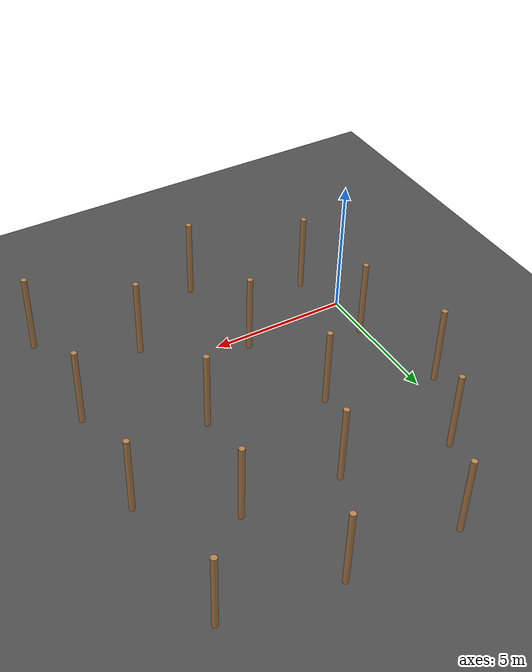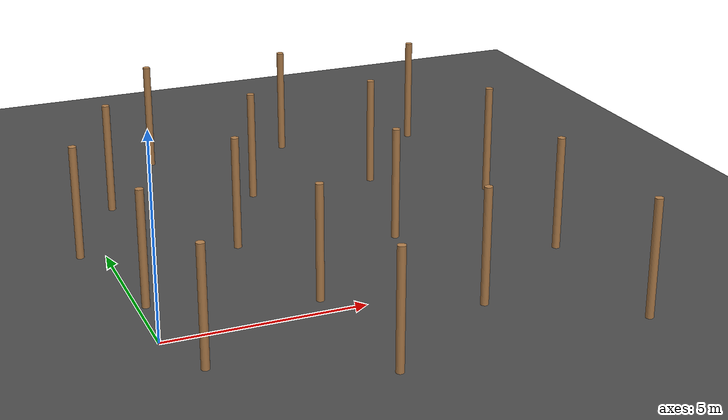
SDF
<sdf version="1.6">
 <world name="default">
  <include><uri>model://ground_plane</uri></include>
  <model name="asphalt_plane">
   <static>1</static>
   <link name="link">
    <collision name="collision"><geometry><box><size>42.4866 44.6464 0.1</size></box></geometry></collision>
    <visual name="visual">
     <cast_shadows>0</cast_shadows>
     <geometry><box><size>42.4866 44.6464 0.1</size></box></geometry>
     <material>
      <script>
       <uri>model://asphalt_plane/materials/scripts</uri>
       <uri>model://asphalt_plane/materials/textures</uri>
       <name>vrc/asphalt</name>
      </script>
     </material>
    </visual>
   </link>
  </model>
  <model name="wooden_cylinder1_clone_23">
   <pose>4.35296 -3.31184 -0.000177 0 -0 0</pose>
   <link name="wooden_cylinder::link_0">
    <pose>0 0 1.5 0 -0 0</pose>
    <inertial>
     <mass>1</mass>
     <inertia><ixx>0.145833</ixx><ixy>0</ixy><ixz>0</ixz><iyy>0.145833</iyy><iyz>0</iyz><izz>0.125</izz></inertia>
    </inertial>
    <visual name="visual">
     <geometry><cylinder><radius>0.1</radius><length>3</length></cylinder></geometry>
     <material>
      <lighting>1</lighting>
      <script><uri>file://media/materials/scripts/gazebo.material</uri><name>Gazebo/Wood</name></script>
      <ambient>0.3 0.3 0.3 1</ambient>
      <diffuse>0.7 0.7 0.7 1</diffuse>
      <specular>0.01 0.01 0.01 1</specular>
      <emissive>0 0 0 1</emissive>
      <shader type="vertex"><normal_map>__default__</normal_map></shader>
     </material>
    </visual>
    <collision name="collision">
     <geometry><cylinder><radius>0.1</radius><length>3</length></cylinder></geometry>
     <surface>
      <friction>
       <ode><mu>1</mu><mu2>1</mu2><fdir1>0 0 0</fdir1><slip1>0</slip1><slip2>0</slip2></ode>
       <torsional>
        <coefficient>1</coefficient>
        <patch_radius>0</patch_radius>
        <surface_radius>0</surface_radius>
        <use_patch_radius>1</use_patch_radius>
        <ode><slip>0</slip></ode>
       </torsional>
      </friction>
      <bounce><restitution_coefficient>0</restitution_coefficient><threshold>1e+06</threshold></bounce>
      <contact>
       <collide_without_contact>0</collide_without_contact>
       <collide_without_contact_bitmask>1</collide_without_contact_bitmask>
       <collide_bitmask>1</collide_bitmask>
       <ode>
        <soft_cfm>0</soft_cfm>
        <soft_erp>0.2</soft_erp>
        <kp>1e+13</kp>
        <kd>1</kd>
        <max_vel>0.01</max_vel>
        <min_depth>0</min_depth>
       </ode>
       <bullet>
        <split_impulse>1</split_impulse>
        <split_impulse_penetration_threshold>-0.01</split_impulse_penetration_threshold>
        <soft_cfm>0</soft_cfm>
        <soft_erp>0.2</soft_erp>
        <kp>1e+13</kp>
        <kd>1</kd>
       </bullet>
      </contact>
     </surface>
    </collision>
   </link>
   <static>1</static>
  </model>
  <model name="wooden_cylinder1_clone_24">
   <pose>0.582381 -1.60032 7e-05 0 -0 0</pose>
   <link name="wooden_cylinder::link_0">
    <pose>0 0 1.5 0 -0 0</pose>
    <inertial>
     <mass>1</mass>
     <inertia><ixx>0.145833</ixx><ixy>0</ixy><ixz>0</ixz><iyy>0.145833</iyy><iyz>0</iyz><izz>0.125</izz></inertia>
    </inertial>
    <visual name="visual">
     <geometry><cylinder><radius>0.1</radius><length>3</length></cylinder></geometry>
     <material>
      <lighting>1</lighting>
      <script><uri>file://media/materials/scripts/gazebo.material</uri><name>Gazebo/Wood</name></script>
      <ambient>0.3 0.3 0.3 1</ambient>
      <diffuse>0.7 0.7 0.7 1</diffuse>
      <specular>0.01 0.01 0.01 1</specular>
      <emissive>0 0 0 1</emissive>
      <shader type="vertex"><normal_map>__default__</normal_map></shader>
     </material>
    </visual>
    <collision name="collision">
     <geometry><cylinder><radius>0.1</radius><length>3</length></cylinder></geometry>
     <surface>
      <friction>
       <ode><mu>1</mu><mu2>1</mu2><fdir1>0 0 0</fdir1><slip1>0</slip1><slip2>0</slip2></ode>
       <torsional>
        <coefficient>1</coefficient>
        <patch_radius>0</patch_radius>
        <surface_radius>0</surface_radius>
        <use_patch_radius>1</use_patch_radius>
        <ode><slip>0</slip></ode>
       </torsional>
      </friction>
      <bounce><restitution_coefficient>0</restitution_coefficient><threshold>1e+06</threshold></bounce>
      <contact>
       <collide_without_contact>0</collide_without_contact>
       <collide_without_contact_bitmask>1</collide_without_contact_bitmask>
       <collide_bitmask>1</collide_bitmask>
       <ode>
        <soft_cfm>0</soft_cfm>
        <soft_erp>0.2</soft_erp>
        <kp>1e+13</kp>
        <kd>1</kd>
        <max_vel>0.01</max_vel>
        <min_depth>0</min_depth>
       </ode>
       <bullet>
        <split_impulse>1</split_impulse>
        <split_impulse_penetration_threshold>-0.01</split_impulse_penetration_threshold>
        <soft_cfm>0</soft_cfm>
        <soft_erp>0.2</soft_erp>
        <kp>1e+13</kp>
        <kd>1</kd>
       </bullet>
      </contact>
     </surface>
    </collision>
   </link>
   <static>1</static>
  </model>
  <model name="wooden_cylinder1_clone_26">
   <pose>0.175606 1.77763 6.1e-05 0 -0 0</pose>
   <link name="wooden_cylinder::link_0">
    <pose>0 0 1.5 0 -0 0</pose>
    <inertial>
     <mass>1</mass>
     <inertia><ixx>0.145833</ixx><ixy>0</ixy><ixz>0</ixz><iyy>0.145833</iyy><iyz>0</iyz><izz>0.125</izz></inertia>
    </inertial>
    <visual name="visual">
     <geometry><cylinder><radius>0.1</radius><length>3</length></cylinder></geometry>
     <material>
      <lighting>1</lighting>
      <script><uri>file://media/materials/scripts/gazebo.material</uri><name>Gazebo/Wood</name></script>
      <ambient>0.3 0.3 0.3 1</ambient>
      <diffuse>0.7 0.7 0.7 1</diffuse>
      <specular>0.01 0.01 0.01 1</specular>
      <emissive>0 0 0 1</emissive>
      <shader type="vertex"><normal_map>__default__</normal_map></shader>
     </material>
    </visual>
    <collision name="collision">
     <geometry><cylinder><radius>0.1</radius><length>3</length></cylinder></geometry>
     <surface>
      <friction>
       <ode><mu>1</mu><mu2>1</mu2><fdir1>0 0 0</fdir1><slip1>0</slip1><slip2>0</slip2></ode>
       <torsional>
        <coefficient>1</coefficient>
        <patch_radius>0</patch_radius>
        <surface_radius>0</surface_radius>
        <use_patch_radius>1</use_patch_radius>
        <ode><slip>0</slip></ode>
       </torsional>
      </friction>
      <bounce><restitution_coefficient>0</restitution_coefficient><threshold>1e+06</threshold></bounce>
      <contact>
       <collide_without_contact>0</collide_without_contact>
       <collide_without_contact_bitmask>1</collide_without_contact_bitmask>
       <collide_bitmask>1</collide_bitmask>
       <ode>
        <soft_cfm>0</soft_cfm>
        <soft_erp>0.2</soft_erp>
        <kp>1e+13</kp>
        <kd>1</kd>
        <max_vel>0.01</max_vel>
        <min_depth>0</min_depth>
       </ode>
       <bullet>
        <split_impulse>1</split_impulse>
        <split_impulse_penetration_threshold>-0.01</split_impulse_penetration_threshold>
        <soft_cfm>0</soft_cfm>
        <soft_erp>0.2</soft_erp>
        <kp>1e+13</kp>
        <kd>1</kd>
       </bullet>
      </contact>
     </surface>
    </collision>
   </link>
   <static>1</static>
  </model>
  <model name="wooden_cylinder1_clone_30">
   <pose>4.04798 0.554378 8.8e-05 0 -0 0</pose>
   <link name="wooden_cylinder::link_0">
    <pose>0 0 1.5 0 -0 0</pose>
    <inertial>
     <mass>1</mass>
     <inertia><ixx>0.145833</ixx><ixy>0</ixy><ixz>0</ixz><iyy>0.145833</iyy><iyz>0</iyz><izz>0.125</izz></inertia>
    </inertial>
    <visual name="visual">
     <geometry><cylinder><radius>0.1</radius><length>3</length></cylinder></geometry>
     <material>
      <lighting>1</lighting>
      <script><uri>file://media/materials/scripts/gazebo.material</uri><name>Gazebo/Wood</name></script>
      <ambient>0.3 0.3 0.3 1</ambient>
      <diffuse>0.7 0.7 0.7 1</diffuse>
      <specular>0.01 0.01 0.01 1</specular>
      <emissive>0 0 0 1</emissive>
      <shader type="vertex"><normal_map>__default__</normal_map></shader>
     </material>
    </visual>
    <collision name="collision">
     <geometry><cylinder><radius>0.1</radius><length>3</length></cylinder></geometry>
     <surface>
      <friction>
       <ode><mu>1</mu><mu2>1</mu2><fdir1>0 0 0</fdir1><slip1>0</slip1><slip2>0</slip2></ode>
       <torsional>
        <coefficient>1</coefficient>
        <patch_radius>0</patch_radius>
        <surface_radius>0</surface_radius>
        <use_patch_radius>1</use_patch_radius>
        <ode><slip>0</slip></ode>
       </torsional>
      </friction>
      <bounce><restitution_coefficient>0</restitution_coefficient><threshold>1e+06</threshold></bounce>
      <contact>
       <collide_without_contact>0</collide_without_contact>
       <collide_without_contact_bitmask>1</collide_without_contact_bitmask>
       <collide_bitmask>1</collide_bitmask>
       <ode>
        <soft_cfm>0</soft_cfm>
        <soft_erp>0.2</soft_erp>
        <kp>1e+13</kp>
        <kd>1</kd>
        <max_vel>0.01</max_vel>
        <min_depth>0</min_depth>
       </ode>
       <bullet>
        <split_impulse>1</split_impulse>
        <split_impulse_penetration_threshold>-0.01</split_impulse_penetration_threshold>
        <soft_cfm>0</soft_cfm>
        <soft_erp>0.2</soft_erp>
        <kp>1e+13</kp>
        <kd>1</kd>
       </bullet>
      </contact>
     </surface>
    </collision>
   </link>
   <static>1</static>
  </model>
  <model name="wooden_cylinder1_clone_32">
   <pose>7.50706 -1.09907 2.9e-05 0 -0 0</pose>
   <link name="wooden_cylinder::link_0">
    <pose>0 0 1.5 0 -0 0</pose>
    <inertial>
     <mass>1</mass>
     <inertia><ixx>0.145833</ixx><ixy>0</ixy><ixz>0</ixz><iyy>0.145833</iyy><iyz>0</iyz><izz>0.125</izz></inertia>
    </inertial>
    <visual name="visual">
     <geometry><cylinder><radius>0.1</radius><length>3</length></cylinder></geometry>
     <material>
      <lighting>1</lighting>
      <script><uri>file://media/materials/scripts/gazebo.material</uri><name>Gazebo/Wood</name></script>
      <ambient>0.3 0.3 0.3 1</ambient>
      <diffuse>0.7 0.7 0.7 1</diffuse>
      <specular>0.01 0.01 0.01 1</specular>
      <emissive>0 0 0 1</emissive>
      <shader type="vertex"><normal_map>__default__</normal_map></shader>
     </material>
    </visual>
    <collision name="collision">
     <geometry><cylinder><radius>0.1</radius><length>3</length></cylinder></geometry>
     <surface>
      <friction>
       <ode><mu>1</mu><mu2>1</mu2><fdir1>0 0 0</fdir1><slip1>0</slip1><slip2>0</slip2></ode>
       <torsional>
        <coefficient>1</coefficient>
        <patch_radius>0</patch_radius>
        <surface_radius>0</surface_radius>
        <use_patch_radius>1</use_patch_radius>
        <ode><slip>0</slip></ode>
       </torsional>
      </friction>
      <bounce><restitution_coefficient>0</restitution_coefficient><threshold>1e+06</threshold></bounce>
      <contact>
       <collide_without_contact>0</collide_without_contact>
       <collide_without_contact_bitmask>1</collide_without_contact_bitmask>
       <collide_bitmask>1</collide_bitmask>
       <ode>
        <soft_cfm>0</soft_cfm>
        <soft_erp>0.2</soft_erp>
        <kp>1e+13</kp>
        <kd>1</kd>
        <max_vel>0.01</max_vel>
        <min_depth>0</min_depth>
       </ode>
       <bullet>
        <split_impulse>1</split_impulse>
        <split_impulse_penetration_threshold>-0.01</split_impulse_penetration_threshold>
        <soft_cfm>0</soft_cfm>
        <soft_erp>0.2</soft_erp>
        <kp>1e+13</kp>
        <kd>1</kd>
       </bullet>
      </contact>
     </surface>
    </collision>
   </link>
   <static>1</static>
  </model>
  <model name="wooden_cylinder1_clone_34">
   <pose>-0.627193 5.1014 0.000134 0 -0 0</pose>
   <link name="wooden_cylinder::link_0">
    <pose>0 0 1.5 0 -0 0</pose>
    <inertial>
     <mass>1</mass>
     <inertia><ixx>0.145833</ixx><ixy>0</ixy><ixz>0</ixz><iyy>0.145833</iyy><iyz>0</iyz><izz>0.125</izz></inertia>
    </inertial>
    <visual name="visual">
     <geometry><cylinder><radius>0.1</radius><length>3</length></cylinder></geometry>
     <material>
      <lighting>1</lighting>
      <script><uri>file://media/materials/scripts/gazebo.material</uri><name>Gazebo/Wood</name></script>
      <ambient>0.3 0.3 0.3 1</ambient>
      <diffuse>0.7 0.7 0.7 1</diffuse>
      <specular>0.01 0.01 0.01 1</specular>
      <emissive>0 0 0 1</emissive>
      <shader type="vertex"><normal_map>__default__</normal_map></shader>
     </material>
    </visual>
    <collision name="collision">
     <geometry><cylinder><radius>0.1</radius><length>3</length></cylinder></geometry>
     <surface>
      <friction>
       <ode><mu>1</mu><mu2>1</mu2><fdir1>0 0 0</fdir1><slip1>0</slip1><slip2>0</slip2></ode>
       <torsional>
        <coefficient>1</coefficient>
        <patch_radius>0</patch_radius>
        <surface_radius>0</surface_radius>
        <use_patch_radius>1</use_patch_radius>
        <ode><slip>0</slip></ode>
       </torsional>
      </friction>
      <bounce><restitution_coefficient>0</restitution_coefficient><threshold>1e+06</threshold></bounce>
      <contact>
       <collide_without_contact>0</collide_without_contact>
       <collide_without_contact_bitmask>1</collide_without_contact_bitmask>
       <collide_bitmask>1</collide_bitmask>
       <ode>
        <soft_cfm>0</soft_cfm>
        <soft_erp>0.2</soft_erp>
        <kp>1e+13</kp>
        <kd>1</kd>
        <max_vel>0.01</max_vel>
        <min_depth>0</min_depth>
       </ode>
       <bullet>
        <split_impulse>1</split_impulse>
        <split_impulse_penetration_threshold>-0.01</split_impulse_penetration_threshold>
        <soft_cfm>0</soft_cfm>
        <soft_erp>0.2</soft_erp>
        <kp>1e+13</kp>
        <kd>1</kd>
       </bullet>
      </contact>
     </surface>
    </collision>
   </link>
   <static>1</static>
  </model>
  <model name="wooden_cylinder1_clone_35">
   <pose>3.22241 4.21506 2.2e-05 0 -0 0</pose>
   <link name="wooden_cylinder::link_0">
    <pose>0 0 1.5 0 -0 0</pose>
    <inertial>
     <mass>1</mass>
     <inertia><ixx>0.145833</ixx><ixy>0</ixy><ixz>0</ixz><iyy>0.145833</iyy><iyz>0</iyz><izz>0.125</izz></inertia>
    </inertial>
    <visual name="visual">
     <geometry><cylinder><radius>0.1</radius><length>3</length></cylinder></geometry>
     <material>
      <lighting>1</lighting>
      <script><uri>file://media/materials/scripts/gazebo.material</uri><name>Gazebo/Wood</name></script>
      <ambient>0.3 0.3 0.3 1</ambient>
      <diffuse>0.7 0.7 0.7 1</diffuse>
      <specular>0.01 0.01 0.01 1</specular>
      <emissive>0 0 0 1</emissive>
      <shader type="vertex"><normal_map>__default__</normal_map></shader>
     </material>
    </visual>
    <collision name="collision">
     <geometry><cylinder><radius>0.1</radius><length>3</length></cylinder></geometry>
     <surface>
      <friction>
       <ode><mu>1</mu><mu2>1</mu2><fdir1>0 0 0</fdir1><slip1>0</slip1><slip2>0</slip2></ode>
       <torsional>
        <coefficient>1</coefficient>
        <patch_radius>0</patch_radius>
        <surface_radius>0</surface_radius>
        <use_patch_radius>1</use_patch_radius>
        <ode><slip>0</slip></ode>
       </torsional>
      </friction>
      <bounce><restitution_coefficient>0</restitution_coefficient><threshold>1e+06</threshold></bounce>
      <contact>
       <collide_without_contact>0</collide_without_contact>
       <collide_without_contact_bitmask>1</collide_without_contact_bitmask>
       <collide_bitmask>1</collide_bitmask>
       <ode>
        <soft_cfm>0</soft_cfm>
        <soft_erp>0.2</soft_erp>
        <kp>1e+13</kp>
        <kd>1</kd>
        <max_vel>0.01</max_vel>
        <min_depth>0</min_depth>
       </ode>
       <bullet>
        <split_impulse>1</split_impulse>
        <split_impulse_penetration_threshold>-0.01</split_impulse_penetration_threshold>
        <soft_cfm>0</soft_cfm>
        <soft_erp>0.2</soft_erp>
        <kp>1e+13</kp>
        <kd>1</kd>
       </bullet>
      </contact>
     </surface>
    </collision>
   </link>
   <static>1</static>
  </model>
  <model name="wooden_cylinder1_clone_37">
   <pose>7.18539 3.28749 1.1e-05 0 -0 0</pose>
   <link name="wooden_cylinder::link_0">
    <pose>0 0 1.5 0 -0 0</pose>
    <inertial>
     <mass>1</mass>
     <inertia><ixx>0.145833</ixx><ixy>0</ixy><ixz>0</ixz><iyy>0.145833</iyy><iyz>0</iyz><izz>0.125</izz></inertia>
    </inertial>
    <visual name="visual">
     <geometry><cylinder><radius>0.1</radius><length>3</length></cylinder></geometry>
     <material>
      <lighting>1</lighting>
      <script><uri>file://media/materials/scripts/gazebo.material</uri><name>Gazebo/Wood</name></script>
      <ambient>0.3 0.3 0.3 1</ambient>
      <diffuse>0.7 0.7 0.7 1</diffuse>
      <specular>0.01 0.01 0.01 1</specular>
      <emissive>0 0 0 1</emissive>
      <shader type="vertex"><normal_map>__default__</normal_map></shader>
     </material>
    </visual>
    <collision name="collision">
     <geometry><cylinder><radius>0.1</radius><length>3</length></cylinder></geometry>
     <surface>
      <friction>
       <ode><mu>1</mu><mu2>1</mu2><fdir1>0 0 0</fdir1><slip1>0</slip1><slip2>0</slip2></ode>
       <torsional>
        <coefficient>1</coefficient>
        <patch_radius>0</patch_radius>
        <surface_radius>0</surface_radius>
        <use_patch_radius>1</use_patch_radius>
        <ode><slip>0</slip></ode>
       </torsional>
      </friction>
      <bounce><restitution_coefficient>0</restitution_coefficient><threshold>1e+06</threshold></bounce>
      <contact>
       <collide_without_contact>0</collide_without_contact>
       <collide_without_contact_bitmask>1</collide_without_contact_bitmask>
       <collide_bitmask>1</collide_bitmask>
       <ode>
        <soft_cfm>0</soft_cfm>
        <soft_erp>0.2</soft_erp>
        <kp>1e+13</kp>
        <kd>1</kd>
        <max_vel>0.01</max_vel>
        <min_depth>0</min_depth>
       </ode>
       <bullet>
        <split_impulse>1</split_impulse>
        <split_impulse_penetration_threshold>-0.01</split_impulse_penetration_threshold>
        <soft_cfm>0</soft_cfm>
        <soft_erp>0.2</soft_erp>
        <kp>1e+13</kp>
        <kd>1</kd>
       </bullet>
      </contact>
     </surface>
    </collision>
   </link>
   <static>1</static>
  </model>
  <model name="wooden_cylinder1_clone_38">
   <pose>0.858138 7.89887 5.8e-05 0 -0 0</pose>
   <link name="wooden_cylinder::link_0">
    <pose>0 0 1.5 0 -0 0</pose>
    <inertial>
     <mass>1</mass>
     <inertia><ixx>0.145833</ixx><ixy>0</ixy><ixz>0</ixz><iyy>0.145833</iyy><iyz>0</iyz><izz>0.125</izz></inertia>
    </inertial>
    <visual name="visual">
     <geometry><cylinder><radius>0.1</radius><length>3</length></cylinder></geometry>
     <material>
      <lighting>1</lighting>
      <script><uri>file://media/materials/scripts/gazebo.material</uri><name>Gazebo/Wood</name></script>
      <ambient>0.3 0.3 0.3 1</ambient>
      <diffuse>0.7 0.7 0.7 1</diffuse>
      <specular>0.01 0.01 0.01 1</specular>
      <emissive>0 0 0 1</emissive>
      <shader type="vertex"><normal_map>__default__</normal_map></shader>
     </material>
    </visual>
    <collision name="collision">
     <geometry><cylinder><radius>0.1</radius><length>3</length></cylinder></geometry>
     <surface>
      <friction>
       <ode><mu>1</mu><mu2>1</mu2><fdir1>0 0 0</fdir1><slip1>0</slip1><slip2>0</slip2></ode>
       <torsional>
        <coefficient>1</coefficient>
        <patch_radius>0</patch_radius>
        <surface_radius>0</surface_radius>
        <use_patch_radius>1</use_patch_radius>
        <ode><slip>0</slip></ode>
       </torsional>
      </friction>
      <bounce><restitution_coefficient>0</restitution_coefficient><threshold>1e+06</threshold></bounce>
      <contact>
       <collide_without_contact>0</collide_without_contact>
       <collide_without_contact_bitmask>1</collide_without_contact_bitmask>
       <collide_bitmask>1</collide_bitmask>
       <ode>
        <soft_cfm>0</soft_cfm>
        <soft_erp>0.2</soft_erp>
        <kp>1e+13</kp>
        <kd>1</kd>
        <max_vel>0.01</max_vel>
        <min_depth>0</min_depth>
       </ode>
       <bullet>
        <split_impulse>1</split_impulse>
        <split_impulse_penetration_threshold>-0.01</split_impulse_penetration_threshold>
        <soft_cfm>0</soft_cfm>
        <soft_erp>0.2</soft_erp>
        <kp>1e+13</kp>
        <kd>1</kd>
       </bullet>
      </contact>
     </surface>
    </collision>
   </link>
   <static>1</static>
  </model>
  <model name="wooden_cylinder1_clone_40">
   <pose>10.6858 -3.14404 6.5e-05 0 -0 0</pose>
   <link name="wooden_cylinder::link_0">
    <pose>0 0 1.5 0 -0 0</pose>
    <inertial>
     <mass>1</mass>
     <inertia><ixx>0.145833</ixx><ixy>0</ixy><ixz>0</ixz><iyy>0.145833</iyy><iyz>0</iyz><izz>0.125</izz></inertia>
    </inertial>
    <visual name="visual">
     <geometry><cylinder><radius>0.1</radius><length>3</length></cylinder></geometry>
     <material>
      <lighting>1</lighting>
      <script><uri>file://media/materials/scripts/gazebo.material</uri><name>Gazebo/Wood</name></script>
      <ambient>0.3 0.3 0.3 1</ambient>
      <diffuse>0.7 0.7 0.7 1</diffuse>
      <specular>0.01 0.01 0.01 1</specular>
      <emissive>0 0 0 1</emissive>
      <shader type="vertex"><normal_map>__default__</normal_map></shader>
     </material>
    </visual>
    <collision name="collision">
     <geometry><cylinder><radius>0.1</radius><length>3</length></cylinder></geometry>
     <surface>
      <friction>
       <ode><mu>1</mu><mu2>1</mu2><fdir1>0 0 0</fdir1><slip1>0</slip1><slip2>0</slip2></ode>
       <torsional>
        <coefficient>1</coefficient>
        <patch_radius>0</patch_radius>
        <surface_radius>0</surface_radius>
        <use_patch_radius>1</use_patch_radius>
        <ode><slip>0</slip></ode>
       </torsional>
      </friction>
      <bounce><restitution_coefficient>0</restitution_coefficient><threshold>1e+06</threshold></bounce>
      <contact>
       <collide_without_contact>0</collide_without_contact>
       <collide_without_contact_bitmask>1</collide_without_contact_bitmask>
       <collide_bitmask>1</collide_bitmask>
       <ode>
        <soft_cfm>0</soft_cfm>
        <soft_erp>0.2</soft_erp>
        <kp>1e+13</kp>
        <kd>1</kd>
        <max_vel>0.01</max_vel>
        <min_depth>0</min_depth>
       </ode>
       <bullet>
        <split_impulse>1</split_impulse>
        <split_impulse_penetration_threshold>-0.01</split_impulse_penetration_threshold>
        <soft_cfm>0</soft_cfm>
        <soft_erp>0.2</soft_erp>
        <kp>1e+13</kp>
        <kd>1</kd>
       </bullet>
      </contact>
     </surface>
    </collision>
   </link>
   <static>1</static>
  </model>
  <model name="wooden_cylinder1_clone_41">
   <pose>4.7064 7.38025 3.6e-05 0 -0 0</pose>
   <link name="wooden_cylinder::link_0">
    <pose>0 0 1.5 0 -0 0</pose>
    <inertial>
     <mass>1</mass>
     <inertia><ixx>0.145833</ixx><ixy>0</ixy><ixz>0</ixz><iyy>0.145833</iyy><iyz>0</iyz><izz>0.125</izz></inertia>
    </inertial>
    <visual name="visual">
     <geometry><cylinder><radius>0.1</radius><length>3</length></cylinder></geometry>
     <material>
      <lighting>1</lighting>
      <script><uri>file://media/materials/scripts/gazebo.material</uri><name>Gazebo/Wood</name></script>
      <ambient>0.3 0.3 0.3 1</ambient>
      <diffuse>0.7 0.7 0.7 1</diffuse>
      <specular>0.01 0.01 0.01 1</specular>
      <emissive>0 0 0 1</emissive>
      <shader type="vertex"><normal_map>__default__</normal_map></shader>
     </material>
    </visual>
    <collision name="collision">
     <geometry><cylinder><radius>0.1</radius><length>3</length></cylinder></geometry>
     <surface>
      <friction>
       <ode><mu>1</mu><mu2>1</mu2><fdir1>0 0 0</fdir1><slip1>0</slip1><slip2>0</slip2></ode>
       <torsional>
        <coefficient>1</coefficient>
        <patch_radius>0</patch_radius>
        <surface_radius>0</surface_radius>
        <use_patch_radius>1</use_patch_radius>
        <ode><slip>0</slip></ode>
       </torsional>
      </friction>
      <bounce><restitution_coefficient>0</restitution_coefficient><threshold>1e+06</threshold></bounce>
      <contact>
       <collide_without_contact>0</collide_without_contact>
       <collide_without_contact_bitmask>1</collide_without_contact_bitmask>
       <collide_bitmask>1</collide_bitmask>
       <ode>
        <soft_cfm>0</soft_cfm>
        <soft_erp>0.2</soft_erp>
        <kp>1e+13</kp>
        <kd>1</kd>
        <max_vel>0.01</max_vel>
        <min_depth>0</min_depth>
       </ode>
       <bullet>
        <split_impulse>1</split_impulse>
        <split_impulse_penetration_threshold>-0.01</split_impulse_penetration_threshold>
        <soft_cfm>0</soft_cfm>
        <soft_erp>0.2</soft_erp>
        <kp>1e+13</kp>
        <kd>1</kd>
       </bullet>
      </contact>
     </surface>
    </collision>
   </link>
   <static>1</static>
  </model>
  <model name="wooden_cylinder1_clone_43">
   <pose>10.6957 1.12593 -3.7e-05 0 -0 0</pose>
   <link name="wooden_cylinder::link_0">
    <pose>0 0 1.5 0 -0 0</pose>
    <inertial>
     <mass>1</mass>
     <inertia><ixx>0.145833</ixx><ixy>0</ixy><ixz>0</ixz><iyy>0.145833</iyy><iyz>0</iyz><izz>0.125</izz></inertia>
    </inertial>
    <visual name="visual">
     <geometry><cylinder><radius>0.1</radius><length>3</length></cylinder></geometry>
     <material>
      <lighting>1</lighting>
      <script><uri>file://media/materials/scripts/gazebo.material</uri><name>Gazebo/Wood</name></script>
      <ambient>0.3 0.3 0.3 1</ambient>
      <diffuse>0.7 0.7 0.7 1</diffuse>
      <specular>0.01 0.01 0.01 1</specular>
      <emissive>0 0 0 1</emissive>
      <shader type="vertex"><normal_map>__default__</normal_map></shader>
     </material>
    </visual>
    <collision name="collision">
     <geometry><cylinder><radius>0.1</radius><length>3</length></cylinder></geometry>
     <surface>
      <friction>
       <ode><mu>1</mu><mu2>1</mu2><fdir1>0 0 0</fdir1><slip1>0</slip1><slip2>0</slip2></ode>
       <torsional>
        <coefficient>1</coefficient>
        <patch_radius>0</patch_radius>
        <surface_radius>0</surface_radius>
        <use_patch_radius>1</use_patch_radius>
        <ode><slip>0</slip></ode>
       </torsional>
      </friction>
      <bounce><restitution_coefficient>0</restitution_coefficient><threshold>1e+06</threshold></bounce>
      <contact>
       <collide_without_contact>0</collide_without_contact>
       <collide_without_contact_bitmask>1</collide_without_contact_bitmask>
       <collide_bitmask>1</collide_bitmask>
       <ode>
        <soft_cfm>0</soft_cfm>
        <soft_erp>0.2</soft_erp>
        <kp>1e+13</kp>
        <kd>1</kd>
        <max_vel>0.01</max_vel>
        <min_depth>0</min_depth>
       </ode>
       <bullet>
        <split_impulse>1</split_impulse>
        <split_impulse_penetration_threshold>-0.01</split_impulse_penetration_threshold>
        <soft_cfm>0</soft_cfm>
        <soft_erp>0.2</soft_erp>
        <kp>1e+13</kp>
        <kd>1</kd>
       </bullet>
      </contact>
     </surface>
    </collision>
   </link>
   <static>1</static>
  </model>
  <model name="wooden_cylinder1_clone_44">
   <pose>2.746 10.8567 -7e-06 0 -0 0</pose>
   <link name="wooden_cylinder::link_0">
    <pose>0 0 1.5 0 -0 0</pose>
    <inertial>
     <mass>1</mass>
     <inertia><ixx>0.145833</ixx><ixy>0</ixy><ixz>0</ixz><iyy>0.145833</iyy><iyz>0</iyz><izz>0.125</izz></inertia>
    </inertial>
    <visual name="visual">
     <geometry><cylinder><radius>0.1</radius><length>3</length></cylinder></geometry>
     <material>
      <lighting>1</lighting>
      <script><uri>file://media/materials/scripts/gazebo.material</uri><name>Gazebo/Wood</name></script>
      <ambient>0.3 0.3 0.3 1</ambient>
      <diffuse>0.7 0.7 0.7 1</diffuse>
      <specular>0.01 0.01 0.01 1</specular>
      <emissive>0 0 0 1</emissive>
      <shader type="vertex"><normal_map>__default__</normal_map></shader>
     </material>
    </visual>
    <collision name="collision">
     <geometry><cylinder><radius>0.1</radius><length>3</length></cylinder></geometry>
     <surface>
      <friction>
       <ode><mu>1</mu><mu2>1</mu2><fdir1>0 0 0</fdir1><slip1>0</slip1><slip2>0</slip2></ode>
       <torsional>
        <coefficient>1</coefficient>
        <patch_radius>0</patch_radius>
        <surface_radius>0</surface_radius>
        <use_patch_radius>1</use_patch_radius>
        <ode><slip>0</slip></ode>
       </torsional>
      </friction>
      <bounce><restitution_coefficient>0</restitution_coefficient><threshold>1e+06</threshold></bounce>
      <contact>
       <collide_without_contact>0</collide_without_contact>
       <collide_without_contact_bitmask>1</collide_without_contact_bitmask>
       <collide_bitmask>1</collide_bitmask>
       <ode>
        <soft_cfm>0</soft_cfm>
        <soft_erp>0.2</soft_erp>
        <kp>1e+13</kp>
        <kd>1</kd>
        <max_vel>0.01</max_vel>
        <min_depth>0</min_depth>
       </ode>
       <bullet>
        <split_impulse>1</split_impulse>
        <split_impulse_penetration_threshold>-0.01</split_impulse_penetration_threshold>
        <soft_cfm>0</soft_cfm>
        <soft_erp>0.2</soft_erp>
        <kp>1e+13</kp>
        <kd>1</kd>
       </bullet>
      </contact>
     </surface>
    </collision>
   </link>
   <static>1</static>
  </model>
  <model name="wooden_cylinder1_clone_45">
   <pose>8.17948 7.25815 4.1e-05 0 -0 0</pose>
   <link name="wooden_cylinder::link_0">
    <pose>0 0 1.5 0 -0 0</pose>
    <inertial>
     <mass>1</mass>
     <inertia><ixx>0.145833</ixx><ixy>0</ixy><ixz>0</ixz><iyy>0.145833</iyy><iyz>0</iyz><izz>0.125</izz></inertia>
    </inertial>
    <visual name="visual">
     <geometry><cylinder><radius>0.1</radius><length>3</length></cylinder></geometry>
     <material>
      <lighting>1</lighting>
      <script><uri>file://media/materials/scripts/gazebo.material</uri><name>Gazebo/Wood</name></script>
      <ambient>0.3 0.3 0.3 1</ambient>
      <diffuse>0.7 0.7 0.7 1</diffuse>
      <specular>0.01 0.01 0.01 1</specular>
      <emissive>0 0 0 1</emissive>
      <shader type="vertex"><normal_map>__default__</normal_map></shader>
     </material>
    </visual>
    <collision name="collision">
     <geometry><cylinder><radius>0.1</radius><length>3</length></cylinder></geometry>
     <surface>
      <friction>
       <ode><mu>1</mu><mu2>1</mu2><fdir1>0 0 0</fdir1><slip1>0</slip1><slip2>0</slip2></ode>
       <torsional>
        <coefficient>1</coefficient>
        <patch_radius>0</patch_radius>
        <surface_radius>0</surface_radius>
        <use_patch_radius>1</use_patch_radius>
        <ode><slip>0</slip></ode>
       </torsional>
      </friction>
      <bounce><restitution_coefficient>0</restitution_coefficient><threshold>1e+06</threshold></bounce>
      <contact>
       <collide_without_contact>0</collide_without_contact>
       <collide_without_contact_bitmask>1</collide_without_contact_bitmask>
       <collide_bitmask>1</collide_bitmask>
       <ode>
        <soft_cfm>0</soft_cfm>
        <soft_erp>0.2</soft_erp>
        <kp>1e+13</kp>
        <kd>1</kd>
        <max_vel>0.01</max_vel>
        <min_depth>0</min_depth>
       </ode>
       <bullet>
        <split_impulse>1</split_impulse>
        <split_impulse_penetration_threshold>-0.01</split_impulse_penetration_threshold>
        <soft_cfm>0</soft_cfm>
        <soft_erp>0.2</soft_erp>
        <kp>1e+13</kp>
        <kd>1</kd>
       </bullet>
      </contact>
     </surface>
    </collision>
   </link>
   <static>1</static>
  </model>
  <model name="wooden_cylinder1_clone_46">
   <pose>6.77885 10.7912 -0.000131 0 -0 0</pose>
   <link name="wooden_cylinder::link_0">
    <pose>0 0 1.5 0 -0 0</pose>
    <inertial>
     <mass>1</mass>
     <inertia><ixx>0.145833</ixx><ixy>0</ixy><ixz>0</ixz><iyy>0.145833</iyy><iyz>0</iyz><izz>0.125</izz></inertia>
    </inertial>
    <visual name="visual">
     <geometry><cylinder><radius>0.1</radius><length>3</length></cylinder></geometry>
     <material>
      <lighting>1</lighting>
      <script><uri>file://media/materials/scripts/gazebo.material</uri><name>Gazebo/Wood</name></script>
      <ambient>0.3 0.3 0.3 1</ambient>
      <diffuse>0.7 0.7 0.7 1</diffuse>
      <specular>0.01 0.01 0.01 1</specular>
      <emissive>0 0 0 1</emissive>
      <shader type="vertex"><normal_map>__default__</normal_map></shader>
     </material>
    </visual>
    <collision name="collision">
     <geometry><cylinder><radius>0.1</radius><length>3</length></cylinder></geometry>
     <surface>
      <friction>
       <ode><mu>1</mu><mu2>1</mu2><fdir1>0 0 0</fdir1><slip1>0</slip1><slip2>0</slip2></ode>
       <torsional>
        <coefficient>1</coefficient>
        <patch_radius>0</patch_radius>
        <surface_radius>0</surface_radius>
        <use_patch_radius>1</use_patch_radius>
        <ode><slip>0</slip></ode>
       </torsional>
      </friction>
      <bounce><restitution_coefficient>0</restitution_coefficient><threshold>1e+06</threshold></bounce>
      <contact>
       <collide_without_contact>0</collide_without_contact>
       <collide_without_contact_bitmask>1</collide_without_contact_bitmask>
       <collide_bitmask>1</collide_bitmask>
       <ode>
        <soft_cfm>0</soft_cfm>
        <soft_erp>0.2</soft_erp>
        <kp>1e+13</kp>
        <kd>1</kd>
        <max_vel>0.01</max_vel>
        <min_depth>0</min_depth>
       </ode>
       <bullet>
        <split_impulse>1</split_impulse>
        <split_impulse_penetration_threshold>-0.01</split_impulse_penetration_threshold>
        <soft_cfm>0</soft_cfm>
        <soft_erp>0.2</soft_erp>
        <kp>1e+13</kp>
        <kd>1</kd>
       </bullet>
      </contact>
     </surface>
    </collision>
   </link>
   <static>1</static>
  </model>
  <model name="wooden_cylinder1_clone_48">
   <pose>10.9079 5.38565 -0.000134 0 -0 0</pose>
   <link name="wooden_cylinder::link_0">
    <pose>0 0 1.5 0 -0 0</pose>
    <inertial>
     <mass>1</mass>
     <inertia><ixx>0.145833</ixx><ixy>0</ixy><ixz>0</ixz><iyy>0.145833</iyy><iyz>0</iyz><izz>0.125</izz></inertia>
    </inertial>
    <visual name="visual">
     <geometry><cylinder><radius>0.1</radius><length>3</length></cylinder></geometry>
     <material>
      <lighting>1</lighting>
      <script><uri>file://media/materials/scripts/gazebo.material</uri><name>Gazebo/Wood</name></script>
      <ambient>0.3 0.3 0.3 1</ambient>
      <diffuse>0.7 0.7 0.7 1</diffuse>
      <specular>0.01 0.01 0.01 1</specular>
      <emissive>0 0 0 1</emissive>
      <shader type="vertex"><normal_map>__default__</normal_map></shader>
     </material>
    </visual>
    <collision name="collision">
     <geometry><cylinder><radius>0.1</radius><length>3</length></cylinder></geometry>
     <surface>
      <friction>
       <ode><mu>1</mu><mu2>1</mu2><fdir1>0 0 0</fdir1><slip1>0</slip1><slip2>0</slip2></ode>
       <torsional>
        <coefficient>1</coefficient>
        <patch_radius>0</patch_radius>
        <surface_radius>0</surface_radius>
        <use_patch_radius>1</use_patch_radius>
        <ode><slip>0</slip></ode>
       </torsional>
      </friction>
      <bounce><restitution_coefficient>0</restitution_coefficient><threshold>1e+06</threshold></bounce>
      <contact>
       <collide_without_contact>0</collide_without_contact>
       <collide_without_contact_bitmask>1</collide_without_contact_bitmask>
       <collide_bitmask>1</collide_bitmask>
       <ode>
        <soft_cfm>0</soft_cfm>
        <soft_erp>0.2</soft_erp>
        <kp>1e+13</kp>
        <kd>1</kd>
        <max_vel>0.01</max_vel>
        <min_depth>0</min_depth>
       </ode>
       <bullet>
        <split_impulse>1</split_impulse>
        <split_impulse_penetration_threshold>-0.01</split_impulse_penetration_threshold>
        <soft_cfm>0</soft_cfm>
        <soft_erp>0.2</soft_erp>
        <kp>1e+13</kp>
        <kd>1</kd>
       </bullet>
      </contact>
     </surface>
    </collision>
   </link>
   <static>1</static>
  </model>
  <model name="wooden_cylinder1_clone_49">
   <pose>10.7269 10.2798 8.2e-05 0 -0 0</pose>
   <link name="wooden_cylinder::link_0">
    <pose>0 0 1.5 0 -0 0</pose>
    <inertial>
     <mass>1</mass>
     <inertia><ixx>0.145833</ixx><ixy>0</ixy><ixz>0</ixz><iyy>0.145833</iyy><iyz>0</iyz><izz>0.125</izz></inertia>
    </inertial>
    <visual name="visual">
     <geometry><cylinder><radius>0.1</radius><length>3</length></cylinder></geometry>
     <material>
      <lighting>1</lighting>
      <script><uri>file://media/materials/scripts/gazebo.material</uri><name>Gazebo/Wood</name></script>
      <ambient>0.3 0.3 0.3 1</ambient>
      <diffuse>0.7 0.7 0.7 1</diffuse>
      <specular>0.01 0.01 0.01 1</specular>
      <emissive>0 0 0 1</emissive>
      <shader type="vertex"><normal_map>__default__</normal_map></shader>
     </material>
    </visual>
    <collision name="collision">
     <geometry><cylinder><radius>0.1</radius><length>3</length></cylinder></geometry>
     <surface>
      <friction>
       <ode><mu>1</mu><mu2>1</mu2><fdir1>0 0 0</fdir1><slip1>0</slip1><slip2>0</slip2></ode>
       <torsional>
        <coefficient>1</coefficient>
        <patch_radius>0</patch_radius>
        <surface_radius>0</surface_radius>
        <use_patch_radius>1</use_patch_radius>
        <ode><slip>0</slip></ode>
       </torsional>
      </friction>
      <bounce><restitution_coefficient>0</restitution_coefficient><threshold>1e+06</threshold></bounce>
      <contact>
       <collide_without_contact>0</collide_without_contact>
       <collide_without_contact_bitmask>1</collide_without_contact_bitmask>
       <collide_bitmask>1</collide_bitmask>
       <ode>
        <soft_cfm>0</soft_cfm>
        <soft_erp>0.2</soft_erp>
        <kp>1e+13</kp>
        <kd>1</kd>
        <max_vel>0.01</max_vel>
        <min_depth>0</min_depth>
       </ode>
       <bullet>
        <split_impulse>1</split_impulse>
        <split_impulse_penetration_threshold>-0.01</split_impulse_penetration_threshold>
        <soft_cfm>0</soft_cfm>
        <soft_erp>0.2</soft_erp>
        <kp>1e+13</kp>
        <kd>1</kd>
       </bullet>
      </contact>
     </surface>
    </collision>
   </link>
   <static>1</static>
  </model>
 </world>
</sdf>
